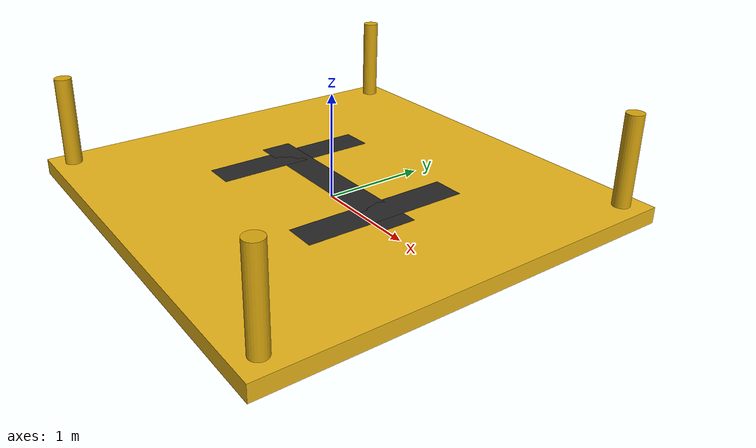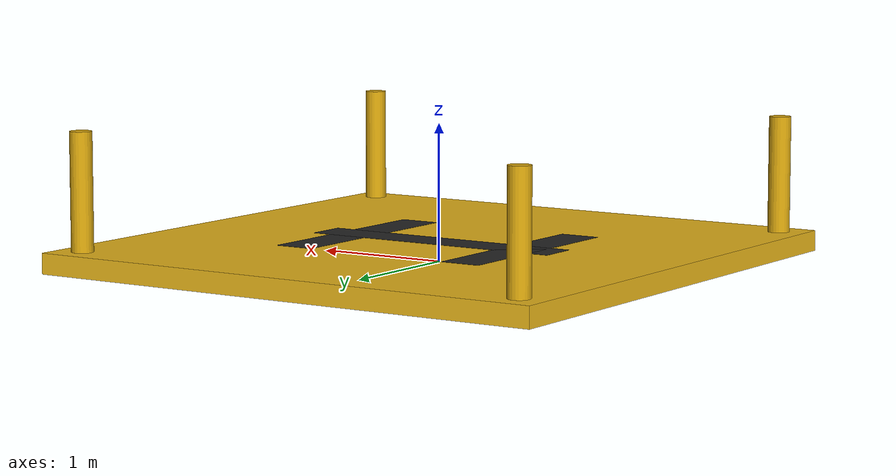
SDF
<?xml version="1.0" encoding="UTF-8"?>
<sdf version="1.9">
  <model name="brs_station">
    <static>true</static>

    <!-- Base platform — yellow pad 4×4 m, 0.15 m tall -->
    <link name="pad">
      <pose>0 0 0.075 0 0 0</pose>
      <collision name="collision">
        <geometry><box><size>4 4 0.15</size></box></geometry>
      </collision>
      <visual name="visual">
        <geometry><box><size>4 4 0.15</size></box></geometry>
        <material>
          <ambient>0.91 0.71 0.10 1</ambient>
          <diffuse>0.91 0.71 0.10 1</diffuse>
          <specular>0.3 0.3 0.1 1</specular>
        </material>
      </visual>
    </link>

    <!-- Landing H marking — dark stripe (horizontal bar) -->
    <link name="h_bar1">
      <pose>0 0 0.151 0 0 0</pose>
      <visual name="visual">
        <geometry><box><size>2.0 0.3 0.002</size></box></geometry>
        <material>
          <ambient>0.15 0.15 0.15 1</ambient>
          <diffuse>0.15 0.15 0.15 1</diffuse>
        </material>
      </visual>
    </link>

    <!-- H left vertical -->
    <link name="h_left">
      <pose>-0.7 0 0.151 0 0 0</pose>
      <visual name="visual">
        <geometry><box><size>0.3 1.6 0.002</size></box></geometry>
        <material>
          <ambient>0.15 0.15 0.15 1</ambient>
          <diffuse>0.15 0.15 0.15 1</diffuse>
        </material>
      </visual>
    </link>

    <!-- H right vertical -->
    <link name="h_right">
      <pose>0.7 0 0.151 0 0 0</pose>
      <visual name="visual">
        <geometry><box><size>0.3 1.6 0.002</size></box></geometry>
        <material>
          <ambient>0.15 0.15 0.15 1</ambient>
          <diffuse>0.15 0.15 0.15 1</diffuse>
        </material>
      </visual>
    </link>

    <!-- Corner post 1 -->
    <link name="post1">
      <pose>1.8 1.8 0.5 0 0 0</pose>
      <visual name="visual">
        <geometry><cylinder><radius>0.08</radius><length>1.0</length></cylinder></geometry>
        <material>
          <ambient>0.85 0.65 0.05 1</ambient>
          <diffuse>0.85 0.65 0.05 1</diffuse>
        </material>
      </visual>
    </link>

    <!-- Corner post 2 -->
    <link name="post2">
      <pose>-1.8 1.8 0.5 0 0 0</pose>
      <visual name="visual">
        <geometry><cylinder><radius>0.08</radius><length>1.0</length></cylinder></geometry>
        <material>
          <ambient>0.85 0.65 0.05 1</ambient>
          <diffuse>0.85 0.65 0.05 1</diffuse>
        </material>
      </visual>
    </link>

    <!-- Corner post 3 -->
    <link name="post3">
      <pose>1.8 -1.8 0.5 0 0 0</pose>
      <visual name="visual">
        <geometry><cylinder><radius>0.08</radius><length>1.0</length></cylinder></geometry>
        <material>
          <ambient>0.85 0.65 0.05 1</ambient>
          <diffuse>0.85 0.65 0.05 1</diffuse>
        </material>
      </visual>
    </link>

    <!-- Corner post 4 -->
    <link name="post4">
      <pose>-1.8 -1.8 0.5 0 0 0</pose>
      <visual name="visual">
        <geometry><cylinder><radius>0.08</radius><length>1.0</length></cylinder></geometry>
        <material>
          <ambient>0.85 0.65 0.05 1</ambient>
          <diffuse>0.85 0.65 0.05 1</diffuse>
        </material>
      </visual>
    </link>

  </model>
</sdf>
